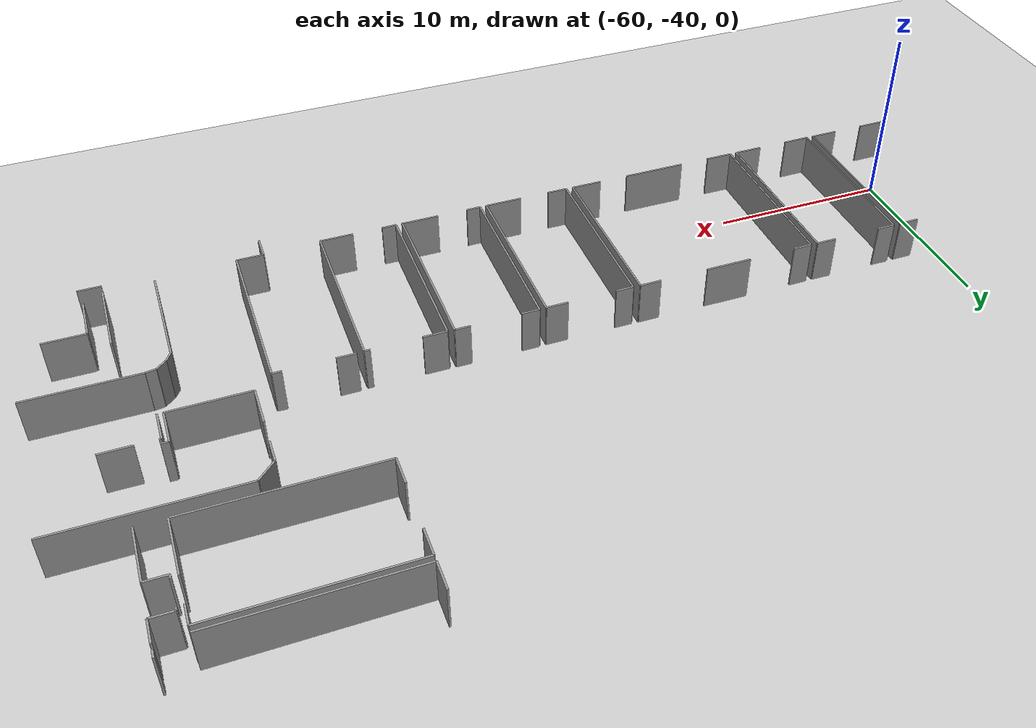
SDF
<sdf version="1.6">
 <world name="default">
  <model name="ground_plane">
   <static>1</static>
   <link name="link">
    <collision name="collision">
     <geometry><plane><normal>0 0 1</normal><size>100 100</size></plane></geometry>
     <surface><friction><ode><mu>100</mu><mu2>50</mu2></ode></friction></surface>
    </collision>
    <visual name="visual">
     <cast_shadows>0</cast_shadows>
     <geometry><plane><normal>0 0 1</normal><size>100 100</size></plane></geometry>
     <material>
      <script><uri>file://media/materials/scripts/gazebo.material</uri><name>Gazebo/Grey</name></script>
     </material>
    </visual>
   </link>
  </model>
  <model name="0510045922_A-40">
   <static>1</static>
   <link name="Wall_1048">
    <collision name="Wall_1048_Collision">
     <geometry><box><size>1.13134650823 0.1 2.5</size></box></geometry>
     <pose>0.565673254115 0 1.25 0 0 0</pose>
    </collision>
    <visual name="Wall_1048_Visual">
     <pose>0.565673254115 0 1.25 0 0 0</pose>
     <geometry><box><size>1.13134650823 0.1 2.5</size></box></geometry>
     <material>
      <script><uri>file://media/materials/scripts/gazebo.material</uri><name>Gazebo/Grey</name></script>
      <ambient>1 1 1 1</ambient>
     </material>
    </visual>
    <pose>75.5626104086 -134.859858931 0 0 0 0.0</pose>
   </link>
   <link name="Wall_1049">
    <collision name="Wall_1049_Collision">
     <geometry><box><size>9.60183008197 0.1 2.5</size></box></geometry>
     <pose>4.80091504099 0 1.25 0 0 0</pose>
    </collision>
    <visual name="Wall_1049_Visual">
     <pose>4.80091504099 0 1.25 0 0 0</pose>
     <geometry><box><size>9.60183008197 0.1 2.5</size></box></geometry>
     <material>
      <script><uri>file://media/materials/scripts/gazebo.material</uri><name>Gazebo/Grey</name></script>
      <ambient>1 1 1 1</ambient>
     </material>
    </visual>
    <pose>76.6939569168 -134.859858931 0 0 0 -1.57079632679</pose>
   </link>
   <link name="Wall_1050">
    <collision name="Wall_1050_Collision">
     <geometry><box><size>1.55353625214 0.1 2.5</size></box></geometry>
     <pose>0.776768126072 0 1.25 0 0 0</pose>
    </collision>
    <visual name="Wall_1050_Visual">
     <pose>0.776768126072 0 1.25 0 0 0</pose>
     <geometry><box><size>1.55353625214 0.1 2.5</size></box></geometry>
     <material>
      <script><uri>file://media/materials/scripts/gazebo.material</uri><name>Gazebo/Grey</name></script>
      <ambient>1 1 1 1</ambient>
     </material>
    </visual>
    <pose>76.6939569168 -144.461689013 0 0 0 3.14159265359</pose>
   </link>
   <link name="Wall_1051">
    <collision name="Wall_1051_Collision">
     <geometry><box><size>1.51237993411 0.1 2.5</size></box></geometry>
     <pose>0.756189967053 0 1.25 0 0 0</pose>
    </collision>
    <visual name="Wall_1051_Visual">
     <pose>0.756189967053 0 1.25 0 0 0</pose>
     <geometry><box><size>1.51237993411 0.1 2.5</size></box></geometry>
     <material>
      <script><uri>file://media/materials/scripts/gazebo.material</uri><name>Gazebo/Grey</name></script>
      <ambient>1 1 1 1</ambient>
     </material>
    </visual>
    <pose>73.3799834784 -144.461689013 0 0 0 -3.1363826167</pose>
   </link>
   <link name="Wall_1052">
    <collision name="Wall_1052_Collision">
     <geometry><box><size>9.63461905064 0.1 2.5</size></box></geometry>
     <pose>4.81730952532 0 1.25 0 0 0</pose>
    </collision>
    <visual name="Wall_1052_Visual">
     <pose>4.81730952532 0 1.25 0 0 0</pose>
     <geometry><box><size>9.63461905064 0.1 2.5</size></box></geometry>
     <material>
      <script><uri>file://media/materials/scripts/gazebo.material</uri><name>Gazebo/Grey</name></script>
      <ambient>1 1 1 1</ambient>
     </material>
    </visual>
    <pose>77.097845841 -144.480752367 0 0 0 1.57079632679</pose>
   </link>
   <link name="Wall_1053">
    <collision name="Wall_1053_Collision">
     <geometry><box><size>0.997648853022 0.1 2.5</size></box></geometry>
     <pose>0.498824426511 0 1.25 0 0 0</pose>
    </collision>
    <visual name="Wall_1053_Visual">
     <pose>0.498824426511 0 1.25 0 0 0</pose>
     <geometry><box><size>0.997648853022 0.1 2.5</size></box></geometry>
     <material>
      <script><uri>file://media/materials/scripts/gazebo.material</uri><name>Gazebo/Grey</name></script>
      <ambient>1 1 1 1</ambient>
     </material>
    </visual>
    <pose>77.097845841 -134.846133316 0 0 0 0.0</pose>
   </link>
   <link name="Wall_1054">
    <collision name="Wall_1054_Collision">
     <geometry><box><size>1.1277880155 0.1 2.5</size></box></geometry>
     <pose>0.563894007752 0 1.25 0 0 0</pose>
    </collision>
    <visual name="Wall_1054_Visual">
     <pose>0.563894007752 0 1.25 0 0 0</pose>
     <geometry><box><size>1.1277880155 0.1 2.5</size></box></geometry>
     <material>
      <script><uri>file://media/materials/scripts/gazebo.material</uri><name>Gazebo/Grey</name></script>
      <ambient>1 1 1 1</ambient>
     </material>
    </visual>
    <pose>80.8014742327 -134.846133316 0 0 0 0.0</pose>
   </link>
   <link name="Wall_1055">
    <collision name="Wall_1055_Collision">
     <geometry><box><size>9.6127597382 0.1 2.5</size></box></geometry>
     <pose>4.8063798691 0 1.25 0 0 0</pose>
    </collision>
    <visual name="Wall_1055_Visual">
     <pose>4.8063798691 0 1.25 0 0 0</pose>
     <geometry><box><size>9.6127597382 0.1 2.5</size></box></geometry>
     <material>
      <script><uri>file://media/materials/scripts/gazebo.material</uri><name>Gazebo/Grey</name></script>
      <ambient>1 1 1 1</ambient>
     </material>
    </visual>
    <pose>81.9292622482 -134.846133316 0 0 0 -1.57079632679</pose>
   </link>
   <link name="Wall_1056">
    <collision name="Wall_1056_Collision">
     <geometry><box><size>1.60818453327 0.1 2.5</size></box></geometry>
     <pose>0.804092266633 0 1.25 0 0 0</pose>
    </collision>
    <visual name="Wall_1056_Visual">
     <pose>0.804092266633 0 1.25 0 0 0</pose>
     <geometry><box><size>1.60818453327 0.1 2.5</size></box></geometry>
     <material>
      <script><uri>file://media/materials/scripts/gazebo.material</uri><name>Gazebo/Grey</name></script>
      <ambient>1 1 1 1</ambient>
     </material>
    </visual>
    <pose>81.9292622482 -144.458893055 0 0 0 3.14159265359</pose>
   </link>
   <link name="Wall_1057">
    <collision name="Wall_1057_Collision">
     <geometry><box><size>1.51709210292 0.1 2.5</size></box></geometry>
     <pose>0.758546051459 0 1.25 0 0 0</pose>
    </collision>
    <visual name="Wall_1057_Visual">
     <pose>0.758546051459 0 1.25 0 0 0</pose>
     <geometry><box><size>1.51709210292 0.1 2.5</size></box></geometry>
     <material>
      <script><uri>file://media/materials/scripts/gazebo.material</uri><name>Gazebo/Grey</name></script>
      <ambient>1 1 1 1</ambient>
     </material>
    </visual>
    <pose>78.6147804537 -144.458893055 0 0 0 -3.12718346324</pose>
   </link>
   <link name="Wall_1058">
    <collision name="Wall_1058_Collision">
     <geometry><box><size>9.6127597382 0.1 2.5</size></box></geometry>
     <pose>4.8063798691 0 1.25 0 0 0</pose>
    </collision>
    <visual name="Wall_1058_Visual">
     <pose>4.8063798691 0 1.25 0 0 0</pose>
     <geometry><box><size>9.6127597382 0.1 2.5</size></box></geometry>
     <material>
      <script><uri>file://media/materials/scripts/gazebo.material</uri><name>Gazebo/Grey</name></script>
      <ambient>1 1 1 1</ambient>
     </material>
    </visual>
    <pose>82.3206964479 -144.458893055 0 0 0 1.57079632679</pose>
   </link>
   <link name="Wall_1059">
    <collision name="Wall_1059_Collision">
     <geometry><box><size>1.04340090233 0.1 2.5</size></box></geometry>
     <pose>0.521700451166 0 1.25 0 0 0</pose>
    </collision>
    <visual name="Wall_1059_Visual">
     <pose>0.521700451166 0 1.25 0 0 0</pose>
     <geometry><box><size>1.04340090233 0.1 2.5</size></box></geometry>
     <material>
      <script><uri>file://media/materials/scripts/gazebo.material</uri><name>Gazebo/Grey</name></script>
      <ambient>1 1 1 1</ambient>
     </material>
    </visual>
    <pose>82.3206964479 -134.846133316 0 0 0 0.0</pose>
   </link>
   <link name="Wall_1060">
    <collision name="Wall_1060_Collision">
     <geometry><box><size>2.55550613205 0.1 2.5</size></box></geometry>
     <pose>1.27775306602 0 1.25 0 0 0</pose>
    </collision>
    <visual name="Wall_1060_Visual">
     <pose>1.27775306602 0 1.25 0 0 0</pose>
     <geometry><box><size>2.55550613205 0.1 2.5</size></box></geometry>
     <material>
      <script><uri>file://media/materials/scripts/gazebo.material</uri><name>Gazebo/Grey</name></script>
      <ambient>1 1 1 1</ambient>
     </material>
    </visual>
    <pose>86.0248331957 -134.846133316 0 0 0 0.0</pose>
   </link>
   <link name="Wall_1061">
    <collision name="Wall_1061_Collision">
     <geometry><box><size>1.18472389909 0.1 2.5</size></box></geometry>
     <pose>0.592361949546 0 1.25 0 0 0</pose>
    </collision>
    <visual name="Wall_1061_Visual">
     <pose>0.592361949546 0 1.25 0 0 0</pose>
     <geometry><box><size>1.18472389909 0.1 2.5</size></box></geometry>
     <material>
      <script><uri>file://media/materials/scripts/gazebo.material</uri><name>Gazebo/Grey</name></script>
      <ambient>1 1 1 1</ambient>
     </material>
    </visual>
    <pose>91.2878439347 -134.846133316 0 0 0 0.0</pose>
   </link>
   <link name="Wall_1062">
    <collision name="Wall_1062_Collision">
     <geometry><box><size>9.60691364301 0.1 2.5</size></box></geometry>
     <pose>4.8034568215 0 1.25 0 0 0</pose>
    </collision>
    <visual name="Wall_1062_Visual">
     <pose>4.8034568215 0 1.25 0 0 0</pose>
     <geometry><box><size>9.60691364301 0.1 2.5</size></box></geometry>
     <material>
      <script><uri>file://media/materials/scripts/gazebo.material</uri><name>Gazebo/Grey</name></script>
      <ambient>1 1 1 1</ambient>
     </material>
    </visual>
    <pose>92.4725678338 -134.846133316 0 0 0 -1.57079632679</pose>
   </link>
   <link name="Wall_1063">
    <collision name="Wall_1063_Collision">
     <geometry><box><size>1.70985575396 0.1 2.5</size></box></geometry>
     <pose>0.854927876978 0 1.25 0 0 0</pose>
    </collision>
    <visual name="Wall_1063_Visual">
     <pose>0.854927876978 0 1.25 0 0 0</pose>
     <geometry><box><size>1.70985575396 0.1 2.5</size></box></geometry>
     <material>
      <script><uri>file://media/materials/scripts/gazebo.material</uri><name>Gazebo/Grey</name></script>
      <ambient>1 1 1 1</ambient>
     </material>
    </visual>
    <pose>92.4725678338 -144.453046959 0 0 0 3.14159265359</pose>
   </link>
   <link name="Wall_1064">
    <collision name="Wall_1064_Collision">
     <geometry><box><size>3.52722882379 0.1 2.5</size></box></geometry>
     <pose>1.7636144119 0 1.25 0 0 0</pose>
    </collision>
    <visual name="Wall_1064_Visual">
     <pose>1.7636144119 0 1.25 0 0 0</pose>
     <geometry><box><size>3.52722882379 0.1 2.5</size></box></geometry>
     <material>
      <script><uri>file://media/materials/scripts/gazebo.material</uri><name>Gazebo/Grey</name></script>
      <ambient>1 1 1 1</ambient>
     </material>
    </visual>
    <pose>89.0851369384 -144.453046959 0 0 0 3.14159265359</pose>
   </link>
   <link name="Wall_1065">
    <collision name="Wall_1065_Collision">
     <geometry><box><size>1.52050434411 0.1 2.5</size></box></geometry>
     <pose>0.760252172055 0 1.25 0 0 0</pose>
    </collision>
    <visual name="Wall_1065_Visual">
     <pose>0.760252172055 0 1.25 0 0 0</pose>
     <geometry><box><size>1.52050434411 0.1 2.5</size></box></geometry>
     <material>
      <script><uri>file://media/materials/scripts/gazebo.material</uri><name>Gazebo/Grey</name></script>
      <ambient>1 1 1 1</ambient>
     </material>
    </visual>
    <pose>83.8411895533 -144.453046959 0 0 0 -3.1377478046</pose>
   </link>
   <link name="Wall_1066">
    <collision name="Wall_1066_Collision">
     <geometry><box><size>9.59395056237 0.1 2.5</size></box></geometry>
     <pose>4.79697528118 0 1.25 0 0 0</pose>
    </collision>
    <visual name="Wall_1066_Visual">
     <pose>4.79697528118 0 1.25 0 0 0</pose>
     <geometry><box><size>9.59395056237 0.1 2.5</size></box></geometry>
     <material>
      <script><uri>file://media/materials/scripts/gazebo.material</uri><name>Gazebo/Grey</name></script>
      <ambient>1 1 1 1</ambient>
     </material>
    </visual>
    <pose>92.8706106628 -144.462451547 0 0 0 1.57079632679</pose>
   </link>
   <link name="Wall_1067">
    <collision name="Wall_1067_Collision">
     <geometry><box><size>0.973756116159 0.1 2.5</size></box></geometry>
     <pose>0.48687805808 0 1.25 0 0 0</pose>
    </collision>
    <visual name="Wall_1067_Visual">
     <pose>0.48687805808 0 1.25 0 0 0</pose>
     <geometry><box><size>0.973756116159 0.1 2.5</size></box></geometry>
     <material>
      <script><uri>file://media/materials/scripts/gazebo.material</uri><name>Gazebo/Grey</name></script>
      <ambient>1 1 1 1</ambient>
     </material>
    </visual>
    <pose>92.8706106628 -134.868500985 0 0 0 0.0</pose>
   </link>
   <link name="Wall_1068">
    <collision name="Wall_1068_Collision">
     <geometry><box><size>1.21141259452 0.1 2.5</size></box></geometry>
     <pose>0.605706297261 0 1.25 0 0 0</pose>
    </collision>
    <visual name="Wall_1068_Visual">
     <pose>0.605706297261 0 1.25 0 0 0</pose>
     <geometry><box><size>1.21141259452 0.1 2.5</size></box></geometry>
     <material>
      <script><uri>file://media/materials/scripts/gazebo.material</uri><name>Gazebo/Grey</name></script>
      <ambient>1 1 1 1</ambient>
     </material>
    </visual>
    <pose>96.5188282392 -134.868500985 0 0 0 0.0</pose>
   </link>
   <link name="Wall_1069">
    <collision name="Wall_1069_Collision">
     <geometry><box><size>9.60132172587 0.1 2.5</size></box></geometry>
     <pose>4.80066086293 0 1.25 0 0 0</pose>
    </collision>
    <visual name="Wall_1069_Visual">
     <pose>4.80066086293 0 1.25 0 0 0</pose>
     <geometry><box><size>9.60132172587 0.1 2.5</size></box></geometry>
     <material>
      <script><uri>file://media/materials/scripts/gazebo.material</uri><name>Gazebo/Grey</name></script>
      <ambient>1 1 1 1</ambient>
     </material>
    </visual>
    <pose>97.7302408337 -134.868500985 0 0 0 -1.57079632679</pose>
   </link>
   <link name="Wall_1070">
    <collision name="Wall_1070_Collision">
     <geometry><box><size>2.05706297261 0.1 2.5</size></box></geometry>
     <pose>1.02853148631 0 1.25 0 0 0</pose>
    </collision>
    <visual name="Wall_1070_Visual">
     <pose>1.02853148631 0 1.25 0 0 0</pose>
     <geometry><box><size>2.05706297261 0.1 2.5</size></box></geometry>
     <material>
      <script><uri>file://media/materials/scripts/gazebo.material</uri><name>Gazebo/Grey</name></script>
      <ambient>1 1 1 1</ambient>
     </material>
    </visual>
    <pose>97.7302408337 -144.469822711 0 0 0 3.14159265359</pose>
   </link>
   <link name="Wall_1071">
    <collision name="Wall_1071_Collision">
     <geometry><box><size>1.10773247459 0.1 2.5</size></box></geometry>
     <pose>0.553866237294 0 1.25 0 0 0</pose>
    </collision>
    <visual name="Wall_1071_Visual">
     <pose>0.553866237294 0 1.25 0 0 0</pose>
     <geometry><box><size>1.10773247459 0.1 2.5</size></box></geometry>
     <material>
      <script><uri>file://media/materials/scripts/gazebo.material</uri><name>Gazebo/Grey</name></script>
      <ambient>1 1 1 1</ambient>
     </material>
    </visual>
    <pose>93.9783186122 -144.469822711 0 0 0 3.13493832317</pose>
   </link>
   <link name="Wall_1072">
    <collision name="Wall_1072_Collision">
     <geometry><box><size>9.63283980428 0.1 2.5</size></box></geometry>
     <pose>4.81641990214 0 1.25 0 0 0</pose>
    </collision>
    <visual name="Wall_1072_Visual">
     <pose>4.81641990214 0 1.25 0 0 0</pose>
     <geometry><box><size>9.63283980428 0.1 2.5</size></box></geometry>
     <material>
      <script><uri>file://media/materials/scripts/gazebo.material</uri><name>Gazebo/Grey</name></script>
      <ambient>1 1 1 1</ambient>
     </material>
    </visual>
    <pose>98.0962572282 -144.480498189 0 0 0 1.57079632679</pose>
   </link>
   <link name="Wall_1073">
    <collision name="Wall_1073_Collision">
     <geometry><box><size>0.975535362521 0.1 2.5</size></box></geometry>
     <pose>0.487767681261 0 1.25 0 0 0</pose>
    </collision>
    <visual name="Wall_1073_Visual">
     <pose>0.487767681261 0 1.25 0 0 0</pose>
     <geometry><box><size>0.975535362521 0.1 2.5</size></box></geometry>
     <material>
      <script><uri>file://media/materials/scripts/gazebo.material</uri><name>Gazebo/Grey</name></script>
      <ambient>1 1 1 1</ambient>
     </material>
    </visual>
    <pose>98.0962572282 -134.847658385 0 0 0 0.0</pose>
   </link>
   <link name="Wall_1074">
    <collision name="Wall_1074_Collision">
     <geometry><box><size>0.847429624452 0.1 2.5</size></box></geometry>
     <pose>0.423714812226 0 1.25 0 0 0</pose>
    </collision>
    <visual name="Wall_1074_Visual">
     <pose>0.423714812226 0 1.25 0 0 0</pose>
     <geometry><box><size>0.847429624452 0.1 2.5</size></box></geometry>
     <material>
      <script><uri>file://media/materials/scripts/gazebo.material</uri><name>Gazebo/Grey</name></script>
      <ambient>1 1 1 1</ambient>
     </material>
    </visual>
    <pose>101.805477537 -134.847658385 0 0 0 0.0</pose>
   </link>
   <link name="Wall_1075">
    <collision name="Wall_1075_Collision">
     <geometry><box><size>9.6211476139 0.1 2.5</size></box></geometry>
     <pose>4.81057380695 0 1.25 0 0 0</pose>
    </collision>
    <visual name="Wall_1075_Visual">
     <pose>4.81057380695 0 1.25 0 0 0</pose>
     <geometry><box><size>9.6211476139 0.1 2.5</size></box></geometry>
     <material>
      <script><uri>file://media/materials/scripts/gazebo.material</uri><name>Gazebo/Grey</name></script>
      <ambient>1 1 1 1</ambient>
     </material>
    </visual>
    <pose>102.652907161 -134.847658385 0 0 0 -1.57079632679</pose>
   </link>
   <link name="Wall_1076">
    <collision name="Wall_1076_Collision">
     <geometry><box><size>2.05426701404 0.1 2.5</size></box></geometry>
     <pose>1.02713350702 0 1.25 0 0 0</pose>
    </collision>
    <visual name="Wall_1076_Visual">
     <pose>1.02713350702 0 1.25 0 0 0</pose>
     <geometry><box><size>2.05426701404 0.1 2.5</size></box></geometry>
     <material>
      <script><uri>file://media/materials/scripts/gazebo.material</uri><name>Gazebo/Grey</name></script>
      <ambient>1 1 1 1</ambient>
     </material>
    </visual>
    <pose>102.652907161 -144.468805999 0 0 0 3.14159265359</pose>
   </link>
   <link name="Wall_1077">
    <collision name="Wall_1077_Collision">
     <geometry><box><size>0.802525287031 0.1 2.5</size></box></geometry>
     <pose>0.401262643515 0 1.25 0 0 0</pose>
    </collision>
    <visual name="Wall_1077_Visual">
     <pose>0.401262643515 0 1.25 0 0 0</pose>
     <geometry><box><size>0.802525287031 0.1 2.5</size></box></geometry>
     <material>
      <script><uri>file://media/materials/scripts/gazebo.material</uri><name>Gazebo/Grey</name></script>
      <ambient>1 1 1 1</ambient>
     </material>
    </visual>
    <pose>98.8986973375 -144.468805999 0 0 0 -3.12702288957</pose>
   </link>
   <link name="Wall_1078">
    <collision name="Wall_1078_Collision">
     <geometry><box><size>9.60818453327 0.1 2.5</size></box></geometry>
     <pose>4.80409226663 0 1.25 0 0 0</pose>
    </collision>
    <visual name="Wall_1078_Visual">
     <pose>4.80409226663 0 1.25 0 0 0</pose>
     <geometry><box><size>9.60818453327 0.1 2.5</size></box></geometry>
     <material>
      <script><uri>file://media/materials/scripts/gazebo.material</uri><name>Gazebo/Grey</name></script>
      <ambient>1 1 1 1</ambient>
     </material>
    </visual>
    <pose>103.017906844 -144.475922984 0 0 0 1.57079632679</pose>
   </link>
   <link name="Wall_1079">
    <collision name="Wall_1079_Collision">
     <geometry><box><size>1.28537840757 0.1 2.5</size></box></geometry>
     <pose>0.642689203787 0 1.25 0 0 0</pose>
    </collision>
    <visual name="Wall_1079_Visual">
     <pose>0.642689203787 0 1.25 0 0 0</pose>
     <geometry><box><size>1.28537840757 0.1 2.5</size></box></geometry>
     <material>
      <script><uri>file://media/materials/scripts/gazebo.material</uri><name>Gazebo/Grey</name></script>
      <ambient>1 1 1 1</ambient>
     </material>
    </visual>
    <pose>103.017906844 -134.867738451 0 0 0 0.0</pose>
   </link>
   <link name="Wall_1080">
    <collision name="Wall_1080_Collision">
     <geometry><box><size>0.307555442588 0.1 2.5</size></box></geometry>
     <pose>0.153777721294 0 1.25 0 0 0</pose>
    </collision>
    <visual name="Wall_1080_Visual">
     <pose>0.153777721294 0 1.25 0 0 0</pose>
     <geometry><box><size>0.307555442588 0.1 2.5</size></box></geometry>
     <material>
      <script><uri>file://media/materials/scripts/gazebo.material</uri><name>Gazebo/Grey</name></script>
      <ambient>1 1 1 1</ambient>
     </material>
    </visual>
    <pose>106.998589312 -134.867738451 0 0 0 0.0</pose>
   </link>
   <link name="Wall_1081">
    <collision name="Wall_1081_Collision">
     <geometry><box><size>9.60208426002 0.1 2.5</size></box></geometry>
     <pose>4.80104213001 0 1.25 0 0 0</pose>
    </collision>
    <visual name="Wall_1081_Visual">
     <pose>4.80104213001 0 1.25 0 0 0</pose>
     <geometry><box><size>9.60208426002 0.1 2.5</size></box></geometry>
     <material>
      <script><uri>file://media/materials/scripts/gazebo.material</uri><name>Gazebo/Grey</name></script>
      <ambient>1 1 1 1</ambient>
     </material>
    </visual>
    <pose>107.306144754 -134.867738451 0 0 0 -1.57079632679</pose>
   </link>
   <link name="Wall_1082">
    <collision name="Wall_1082_Collision">
     <geometry><box><size>1.83160704073 0.1 2.5</size></box></geometry>
     <pose>0.915803520366 0 1.25 0 0 0</pose>
    </collision>
    <visual name="Wall_1082_Visual">
     <pose>0.915803520366 0 1.25 0 0 0</pose>
     <geometry><box><size>1.83160704073 0.1 2.5</size></box></geometry>
     <material>
      <script><uri>file://media/materials/scripts/gazebo.material</uri><name>Gazebo/Grey</name></script>
      <ambient>1 1 1 1</ambient>
     </material>
    </visual>
    <pose>107.306144754 -144.469822711 0 0 0 3.14159265359</pose>
   </link>
   <link name="Wall_1083">
    <collision name="Wall_1083_Collision">
     <geometry><box><size>0.808563394873 0.1 2.5</size></box></geometry>
     <pose>0.404281697436 0 1.25 0 0 0</pose>
    </collision>
    <visual name="Wall_1083_Visual">
     <pose>0.404281697436 0 1.25 0 0 0</pose>
     <geometry><box><size>0.808563394873 0.1 2.5</size></box></geometry>
     <material>
      <script><uri>file://media/materials/scripts/gazebo.material</uri><name>Gazebo/Grey</name></script>
      <ambient>1 1 1 1</ambient>
     </material>
    </visual>
    <pose>103.826447226 -144.469822711 0 0 0 -3.13404799951</pose>
   </link>
   <link name="Wall_1085">
    <collision name="Wall_1085_Collision">
     <geometry><box><size>1.04594268285 0.1 2.5</size></box></geometry>
     <pose>0.522971341425 0 1.25 0 0 0</pose>
    </collision>
    <visual name="Wall_1085_Visual">
     <pose>0.522971341425 0 1.25 0 0 0</pose>
     <geometry><box><size>1.04594268285 0.1 2.5</size></box></geometry>
     <material>
      <script><uri>file://media/materials/scripts/gazebo.material</uri><name>Gazebo/Grey</name></script>
      <ambient>1 1 1 1</ambient>
     </material>
    </visual>
    <pose>107.676227998 -134.833424414 0 0 0 0.0</pose>
   </link>
   <link name="Wall_1086">
    <collision name="Wall_1086_Collision">
     <geometry><box><size>0.50530596683 0.1 2.5</size></box></geometry>
     <pose>0.252652983415 0 1.25 0 0 0</pose>
    </collision>
    <visual name="Wall_1086_Visual">
     <pose>0.252652983415 0 1.25 0 0 0</pose>
     <geometry><box><size>0.50530596683 0.1 2.5</size></box></geometry>
     <material>
      <script><uri>file://media/materials/scripts/gazebo.material</uri><name>Gazebo/Grey</name></script>
      <ambient>1 1 1 1</ambient>
     </material>
    </visual>
    <pose>111.392565292 -134.833424414 0 0 0 0.0</pose>
   </link>
   <link name="Wall_1087">
    <collision name="Wall_1087_Collision">
     <geometry><box><size>9.50346317595 0.1 2.5</size></box></geometry>
     <pose>4.75173158798 0 1.25 0 0 0</pose>
    </collision>
    <visual name="Wall_1087_Visual">
     <pose>4.75173158798 0 1.25 0 0 0</pose>
     <geometry><box><size>9.50346317595 0.1 2.5</size></box></geometry>
     <material>
      <script><uri>file://media/materials/scripts/gazebo.material</uri><name>Gazebo/Grey</name></script>
      <ambient>1 1 1 1</ambient>
     </material>
    </visual>
    <pose>111.897871259 -134.833424414 0 0 0 -1.57079632679</pose>
   </link>
   <link name="Wall_1088">
    <collision name="Wall_1088_Collision">
     <geometry><box><size>1.45415263392 0.1 2.5</size></box></geometry>
     <pose>0.72707631696 0 1.25 0 0 0</pose>
    </collision>
    <visual name="Wall_1088_Visual">
     <pose>0.72707631696 0 1.25 0 0 0</pose>
     <geometry><box><size>1.45415263392 0.1 2.5</size></box></geometry>
     <material>
      <script><uri>file://media/materials/scripts/gazebo.material</uri><name>Gazebo/Grey</name></script>
      <ambient>1 1 1 1</ambient>
     </material>
    </visual>
    <pose>111.897871259 -144.33688759 0 0 0 3.14159265359</pose>
   </link>
   <link name="Wall_1089">
    <collision name="Wall_1089_Collision">
     <geometry><box><size>1.35451483764 0.1 2.5</size></box></geometry>
     <pose>0.677257418822 0 1.25 0 0 0</pose>
    </collision>
    <visual name="Wall_1089_Visual">
     <pose>0.677257418822 0 1.25 0 0 0</pose>
     <geometry><box><size>1.35451483764 0.1 2.5</size></box></geometry>
     <material>
      <script><uri>file://media/materials/scripts/gazebo.material</uri><name>Gazebo/Grey</name></script>
      <ambient>1 1 1 1</ambient>
     </material>
    </visual>
    <pose>110.443718625 -144.33688759 0 0 0 -1.57079632679</pose>
   </link>
   <link name="Wall_1204">
    <collision name="Wall_1204_Collision">
     <geometry><box><size>2.50034949482 0.1 2.5</size></box></geometry>
     <pose>1.25017474741 0 1.25 0 0 0</pose>
    </collision>
    <visual name="Wall_1204_Visual">
     <pose>1.25017474741 0 1.25 0 0 0</pose>
     <geometry><box><size>2.50034949482 0.1 2.5</size></box></geometry>
     <material>
      <script><uri>file://media/materials/scripts/gazebo.material</uri><name>Gazebo/Grey</name></script>
      <ambient>1 1 1 1</ambient>
     </material>
    </visual>
    <pose>119.949215225 -143.438622355 0 0 0 1.57079632679</pose>
   </link>
   <link name="Wall_1205">
    <collision name="Wall_1205_Collision">
     <geometry><box><size>2.2761644532 0.1 2.5</size></box></geometry>
     <pose>1.1380822266 0 1.25 0 0 0</pose>
    </collision>
    <visual name="Wall_1205_Visual">
     <pose>1.1380822266 0 1.25 0 0 0</pose>
     <geometry><box><size>2.2761644532 0.1 2.5</size></box></geometry>
     <material>
      <script><uri>file://media/materials/scripts/gazebo.material</uri><name>Gazebo/Grey</name></script>
      <ambient>1 1 1 1</ambient>
     </material>
    </visual>
    <pose>119.949215225 -140.93827286 0 0 0 0.0</pose>
   </link>
   <link name="Wall_1356">
    <collision name="Wall_1356_Collision">
     <geometry><box><size>1.55582385461 0.1 2.5</size></box></geometry>
     <pose>0.777911927305 0 1.25 0 0 0</pose>
    </collision>
    <visual name="Wall_1356_Visual">
     <pose>0.777911927305 0 1.25 0 0 0</pose>
     <geometry><box><size>1.55582385461 0.1 2.5</size></box></geometry>
     <material>
      <script><uri>file://media/materials/scripts/gazebo.material</uri><name>Gazebo/Grey</name></script>
      <ambient>1 1 1 1</ambient>
     </material>
    </visual>
    <pose>107.742060113 -121.178216941 0 0 0 1.57079632679</pose>
   </link>
   <link name="Wall_1361">
    <collision name="Wall_1361_Collision">
     <geometry><box><size>10.0832440328 0.1 2.5</size></box></geometry>
     <pose>5.04162201638 0 1.25 0 0 0</pose>
    </collision>
    <visual name="Wall_1361_Visual">
     <pose>5.04162201638 0 1.25 0 0 0</pose>
     <geometry><box><size>10.0832440328 0.1 2.5</size></box></geometry>
     <material>
      <script><uri>file://media/materials/scripts/gazebo.material</uri><name>Gazebo/Grey</name></script>
      <ambient>1 1 1 1</ambient>
     </material>
    </visual>
    <pose>117.825303425 -121.17440427 0 0 0 -3.14121453412</pose>
   </link>
   <link name="Wall_1399">
    <collision name="Wall_1399_Collision">
     <geometry><box><size>0.423206456123 0.1 2.5</size></box></geometry>
     <pose>0.211603228061 0 1.25 0 0 0</pose>
    </collision>
    <visual name="Wall_1399_Visual">
     <pose>0.211603228061 0 1.25 0 0 0</pose>
     <geometry><box><size>0.423206456123 0.1 2.5</size></box></geometry>
     <material>
      <script><uri>file://media/materials/scripts/gazebo.material</uri><name>Gazebo/Grey</name></script>
      <ambient>1 1 1 1</ambient>
     </material>
    </visual>
    <pose>119.327749889 -120.878795196 0 0 0 1.57079632679</pose>
   </link>
   <link name="Wall_1404">
    <collision name="Wall_1404_Collision">
     <geometry><box><size>1.5832750842 0.1 2.5</size></box></geometry>
     <pose>0.791637542098 0 1.25 0 0 0</pose>
    </collision>
    <visual name="Wall_1404_Visual">
     <pose>0.791637542098 0 1.25 0 0 0</pose>
     <geometry><box><size>1.5832750842 0.1 2.5</size></box></geometry>
     <material>
      <script><uri>file://media/materials/scripts/gazebo.material</uri><name>Gazebo/Grey</name></script>
      <ambient>1 1 1 1</ambient>
     </material>
    </visual>
    <pose>107.754769016 -127.373044418 0 0 0 1.57079632679</pose>
   </link>
   <link name="Wall_1405">
    <collision name="Wall_1405_Collision">
     <geometry><box><size>1.53930228125 0.1 2.5</size></box></geometry>
     <pose>0.769651140624 0 1.25 0 0 0</pose>
    </collision>
    <visual name="Wall_1405_Visual">
     <pose>0.769651140624 0 1.25 0 0 0</pose>
     <geometry><box><size>1.53930228125 0.1 2.5</size></box></geometry>
     <material>
      <script><uri>file://media/materials/scripts/gazebo.material</uri><name>Gazebo/Grey</name></script>
      <ambient>1 1 1 1</ambient>
     </material>
    </visual>
    <pose>107.754769016 -123.052017538 0 0 0 1.57079632679</pose>
   </link>
   <link name="Wall_1406">
    <collision name="Wall_1406_Collision">
     <geometry><box><size>10.0697718752 0.1 2.5</size></box></geometry>
     <pose>5.0348859376 0 1.25 0 0 0</pose>
    </collision>
    <visual name="Wall_1406_Visual">
     <pose>5.0348859376 0 1.25 0 0 0</pose>
     <geometry><box><size>10.0697718752 0.1 2.5</size></box></geometry>
     <material>
      <script><uri>file://media/materials/scripts/gazebo.material</uri><name>Gazebo/Grey</name></script>
      <ambient>1 1 1 1</ambient>
     </material>
    </visual>
    <pose>107.754769016 -121.512715257 0 0 0 0.0</pose>
   </link>
   <link name="Wall_1407">
    <collision name="Wall_1407_Collision">
     <geometry><box><size>1.10491199085 0.1 2.5</size></box></geometry>
     <pose>0.552455995425 0 1.25 0 0 0</pose>
    </collision>
    <visual name="Wall_1407_Visual">
     <pose>0.552455995425 0 1.25 0 0 0</pose>
     <geometry><box><size>1.10491199085 0.1 2.5</size></box></geometry>
     <material>
      <script><uri>file://media/materials/scripts/gazebo.material</uri><name>Gazebo/Grey</name></script>
      <ambient>1 1 1 1</ambient>
     </material>
    </visual>
    <pose>117.824540891 -121.512715257 0 0 0 -1.57079632679</pose>
   </link>
   <link name="Wall_1408">
    <collision name="Wall_1408_Collision">
     <geometry><box><size>3.25322488403 0.1 2.5</size></box></geometry>
     <pose>1.62661244202 0 1.25 0 0 0</pose>
    </collision>
    <visual name="Wall_1408_Visual">
     <pose>1.62661244202 0 1.25 0 0 0</pose>
     <geometry><box><size>3.25322488403 0.1 2.5</size></box></geometry>
     <material>
      <script><uri>file://media/materials/scripts/gazebo.material</uri><name>Gazebo/Grey</name></script>
      <ambient>1 1 1 1</ambient>
     </material>
    </visual>
    <pose>117.824540891 -124.133036792 0 0 0 -1.57079632679</pose>
   </link>
   <link name="Wall_1409">
    <collision name="Wall_1409_Collision">
     <geometry><box><size>10.0697805495 0.1 2.5</size></box></geometry>
     <pose>5.03489027473 0 1.25 0 0 0</pose>
    </collision>
    <visual name="Wall_1409_Visual">
     <pose>5.03489027473 0 1.25 0 0 0</pose>
     <geometry><box><size>10.0697805495 0.1 2.5</size></box></geometry>
     <material>
      <script><uri>file://media/materials/scripts/gazebo.material</uri><name>Gazebo/Grey</name></script>
      <ambient>1 1 1 1</ambient>
     </material>
    </visual>
    <pose>117.824540891 -127.386261676 0 0 0 3.14028008651</pose>
   </link>
   <link name="Wall_1415">
    <collision name="Wall_1415_Collision">
     <geometry><box><size>3.08317976743 0.1 2.5</size></box></geometry>
     <pose>1.54158988371 0 1.25 0 0 0</pose>
    </collision>
    <visual name="Wall_1415_Visual">
     <pose>1.54158988371 0 1.25 0 0 0</pose>
     <geometry><box><size>3.08317976743 0.1 2.5</size></box></geometry>
     <material>
      <script><uri>file://media/materials/scripts/gazebo.material</uri><name>Gazebo/Grey</name></script>
      <ambient>1 1 1 1</ambient>
     </material>
    </visual>
    <pose>119.322666328 -127.392107771 0 0 0 1.57079632679</pose>
   </link>
   <link name="Wall_1416">
    <collision name="Wall_1416_Collision">
     <geometry><box><size>1.14507212302 0.1 2.5</size></box></geometry>
     <pose>0.572536061511 0 1.25 0 0 0</pose>
    </collision>
    <visual name="Wall_1416_Visual">
     <pose>0.572536061511 0 1.25 0 0 0</pose>
     <geometry><box><size>1.14507212302 0.1 2.5</size></box></geometry>
     <material>
      <script><uri>file://media/materials/scripts/gazebo.material</uri><name>Gazebo/Grey</name></script>
      <ambient>1 1 1 1</ambient>
     </material>
    </visual>
    <pose>119.322666328 -124.308928004 0 0 0 3.14159265359</pose>
   </link>
   <link name="Wall_1417">
    <collision name="Wall_1417_Collision">
     <geometry><box><size>0.20918853657 0.1 2.5</size></box></geometry>
     <pose>0.104594268285 0 1.25 0 0 0</pose>
    </collision>
    <visual name="Wall_1417_Visual">
     <pose>0.104594268285 0 1.25 0 0 0</pose>
     <geometry><box><size>0.20918853657 0.1 2.5</size></box></geometry>
     <material>
      <script><uri>file://media/materials/scripts/gazebo.material</uri><name>Gazebo/Grey</name></script>
      <ambient>1 1 1 1</ambient>
     </material>
    </visual>
    <pose>118.177594205 -124.308928004 0 0 0 1.57079632679</pose>
   </link>
   <link name="Wall_1418">
    <collision name="Wall_1418_Collision">
     <geometry><box><size>0.19012518269 0.1 2.5</size></box></geometry>
     <pose>0.0950625913452 0 1.25 0 0 0</pose>
    </collision>
    <visual name="Wall_1418_Visual">
     <pose>0.0950625913452 0 1.25 0 0 0</pose>
     <geometry><box><size>0.19012518269 0.1 2.5</size></box></geometry>
     <material>
      <script><uri>file://media/materials/scripts/gazebo.material</uri><name>Gazebo/Grey</name></script>
      <ambient>1 1 1 1</ambient>
     </material>
    </visual>
    <pose>118.177594205 -122.594242867 0 0 0 1.57079632679</pose>
   </link>
   <link name="Wall_1419">
    <collision name="Wall_1419_Collision">
     <geometry><box><size>1.15879773782 0.1 2.5</size></box></geometry>
     <pose>0.579398868908 0 1.25 0 0 0</pose>
    </collision>
    <visual name="Wall_1419_Visual">
     <pose>0.579398868908 0 1.25 0 0 0</pose>
     <geometry><box><size>1.15879773782 0.1 2.5</size></box></geometry>
     <material>
      <script><uri>file://media/materials/scripts/gazebo.material</uri><name>Gazebo/Grey</name></script>
      <ambient>1 1 1 1</ambient>
     </material>
    </visual>
    <pose>118.177594205 -122.404117684 0 0 0 0.0</pose>
   </link>
   <link name="Wall_1420">
    <collision name="Wall_1420_Collision">
     <geometry><box><size>1.24267649488 0.1 2.5</size></box></geometry>
     <pose>0.621338247442 0 1.25 0 0 0</pose>
    </collision>
    <visual name="Wall_1420_Visual">
     <pose>0.621338247442 0 1.25 0 0 0</pose>
     <geometry><box><size>1.24267649488 0.1 2.5</size></box></geometry>
     <material>
      <script><uri>file://media/materials/scripts/gazebo.material</uri><name>Gazebo/Grey</name></script>
      <ambient>1 1 1 1</ambient>
     </material>
    </visual>
    <pose>119.336391943 -122.404117684 0 0 0 1.57079632679</pose>
   </link>
   <link name="Wall_1426">
    <collision name="Wall_1426_Collision">
     <geometry><box><size>1.69663849527 0.1 2.5</size></box></geometry>
     <pose>0.848319247633 0 1.25 0 0 0</pose>
    </collision>
    <visual name="Wall_1426_Visual">
     <pose>0.848319247633 0 1.25 0 0 0</pose>
     <geometry><box><size>1.69663849527 0.1 2.5</size></box></geometry>
     <material>
      <script><uri>file://media/materials/scripts/gazebo.material</uri><name>Gazebo/Grey</name></script>
      <ambient>1 1 1 1</ambient>
     </material>
    </visual>
    <pose>117.450390799 -133.958289382 0 0 0 1.57079632679</pose>
   </link>
   <link name="Wall_1427">
    <collision name="Wall_1427_Collision">
     <geometry><box><size>0.109804918345 0.1 2.5</size></box></geometry>
     <pose>0.0549024591727 0 1.25 0 0 0</pose>
    </collision>
    <visual name="Wall_1427_Visual">
     <pose>0.0549024591727 0 1.25 0 0 0</pose>
     <geometry><box><size>0.109804918345 0.1 2.5</size></box></geometry>
     <material>
      <script><uri>file://media/materials/scripts/gazebo.material</uri><name>Gazebo/Grey</name></script>
      <ambient>1 1 1 1</ambient>
     </material>
    </visual>
    <pose>117.450390799 -132.261650886 0 0 0 0.0</pose>
   </link>
   <link name="Wall_1428">
    <collision name="Wall_1428_Collision">
     <geometry><box><size>1.68825061956 0.1 2.5</size></box></geometry>
     <pose>0.844125309779 0 1.25 0 0 0</pose>
    </collision>
    <visual name="Wall_1428_Visual">
     <pose>0.844125309779 0 1.25 0 0 0</pose>
     <geometry><box><size>1.68825061956 0.1 2.5</size></box></geometry>
     <material>
      <script><uri>file://media/materials/scripts/gazebo.material</uri><name>Gazebo/Grey</name></script>
      <ambient>1 1 1 1</ambient>
     </material>
    </visual>
    <pose>118.679595857 -132.261650886 0 0 0 0.0</pose>
   </link>
   <link name="Wall_1436">
    <collision name="Wall_1436_Collision">
     <geometry><box><size>2.22126199403 0.1 2.5</size></box></geometry>
     <pose>1.11063099701 0 1.25 0 0 0</pose>
    </collision>
    <visual name="Wall_1436_Visual">
     <pose>1.11063099701 0 1.25 0 0 0</pose>
     <geometry><box><size>2.22126199403 0.1 2.5</size></box></geometry>
     <material>
      <script><uri>file://media/materials/scripts/gazebo.material</uri><name>Gazebo/Grey</name></script>
      <ambient>1 1 1 1</ambient>
     </material>
    </visual>
    <pose>112.871373197 -133.95066404 0 0 0 1.57079632679</pose>
   </link>
   <link name="Wall_1437">
    <collision name="Wall_1437_Collision">
     <geometry><box><size>1.30774607613 0.1 2.5</size></box></geometry>
     <pose>0.653873038063 0 1.25 0 0 0</pose>
    </collision>
    <visual name="Wall_1437_Visual">
     <pose>0.653873038063 0 1.25 0 0 0</pose>
     <geometry><box><size>1.30774607613 0.1 2.5</size></box></geometry>
     <material>
      <script><uri>file://media/materials/scripts/gazebo.material</uri><name>Gazebo/Grey</name></script>
      <ambient>1 1 1 1</ambient>
     </material>
    </visual>
    <pose>112.871373197 -130.40996378 0 0 0 1.57079632679</pose>
   </link>
   <link name="Wall_1438">
    <collision name="Wall_1438_Collision">
     <geometry><box><size>1.31909154775 0.1 2.5</size></box></geometry>
     <pose>0.659545773873 0 1.25 0 0 0</pose>
    </collision>
    <visual name="Wall_1438_Visual">
     <pose>0.659545773873 0 1.25 0 0 0</pose>
     <geometry><box><size>1.31909154775 0.1 2.5</size></box></geometry>
     <material>
      <script><uri>file://media/materials/scripts/gazebo.material</uri><name>Gazebo/Grey</name></script>
      <ambient>1 1 1 1</ambient>
     </material>
    </visual>
    <pose>112.871373197 -129.102217704 0 0 0 0.777086595701</pose>
   </link>
   <link name="Wall_1439">
    <collision name="Wall_1439_Collision">
     <geometry><box><size>9.55912816928 0.1 2.5</size></box></geometry>
     <pose>4.77956408464 0 1.25 0 0 0</pose>
    </collision>
    <visual name="Wall_1439_Visual">
     <pose>4.77956408464 0 1.25 0 0 0</pose>
     <geometry><box><size>9.55912816928 0.1 2.5</size></box></geometry>
     <material>
      <script><uri>file://media/materials/scripts/gazebo.material</uri><name>Gazebo/Grey</name></script>
      <ambient>1 1 1 1</ambient>
     </material>
    </visual>
    <pose>113.811831988 -128.177263773 0 0 0 0.0</pose>
   </link>
   <link name="Wall_1444">
    <collision name="Wall_1444_Collision">
     <geometry><box><size>0.398805363157 0.1 2.5</size></box></geometry>
     <pose>0.199402681578 0 1.25 0 0 0</pose>
    </collision>
    <visual name="Wall_1444_Visual">
     <pose>0.199402681578 0 1.25 0 0 0</pose>
     <geometry><box><size>0.398805363157 0.1 2.5</size></box></geometry>
     <material>
      <script><uri>file://media/materials/scripts/gazebo.material</uri><name>Gazebo/Grey</name></script>
      <ambient>1 1 1 1</ambient>
     </material>
    </visual>
    <pose>117.543165788 -131.95333291 0 0 0 3.14159265359</pose>
   </link>
   <link name="Wall_1445">
    <collision name="Wall_1445_Collision">
     <geometry><box><size>1.98309715956 0.1 2.5</size></box></geometry>
     <pose>0.99154857978 0 1.25 0 0 0</pose>
    </collision>
    <visual name="Wall_1445_Visual">
     <pose>0.99154857978 0 1.25 0 0 0</pose>
     <geometry><box><size>1.98309715956 0.1 2.5</size></box></geometry>
     <material>
      <script><uri>file://media/materials/scripts/gazebo.material</uri><name>Gazebo/Grey</name></script>
      <ambient>1 1 1 1</ambient>
     </material>
    </visual>
    <pose>117.144360424 -131.95333291 0 0 0 -1.57079632679</pose>
   </link>
   <link name="Wall_1446">
    <collision name="Wall_1446_Collision">
     <geometry><box><size>4.27301093525 0.1 2.5</size></box></geometry>
     <pose>2.13650546762 0 1.25 0 0 0</pose>
    </collision>
    <visual name="Wall_1446_Visual">
     <pose>2.13650546762 0 1.25 0 0 0</pose>
     <geometry><box><size>4.27301093525 0.1 2.5</size></box></geometry>
     <material>
      <script><uri>file://media/materials/scripts/gazebo.material</uri><name>Gazebo/Grey</name></script>
      <ambient>1 1 1 1</ambient>
     </material>
    </visual>
    <pose>117.144360424 -133.936430069 0 0 0 -3.13826151369</pose>
   </link>
   <link name="Wall_1454">
    <collision name="Wall_1454_Collision">
     <geometry><box><size>6.07638050454 0.1 2.5</size></box></geometry>
     <pose>3.03819025227 0 1.25 0 0 0</pose>
    </collision>
    <visual name="Wall_1454_Visual">
     <pose>3.03819025227 0 1.25 0 0 0</pose>
     <geometry><box><size>6.07638050454 0.1 2.5</size></box></geometry>
     <material>
      <script><uri>file://media/materials/scripts/gazebo.material</uri><name>Gazebo/Grey</name></script>
      <ambient>1 1 1 1</ambient>
     </material>
    </visual>
    <pose>116.23948656 -144.094655906 0 0 0 1.57079632679</pose>
   </link>
   <link name="Wall_1455">
    <collision name="Wall_1455_Collision">
     <geometry><box><size>0.577500420593 0.1 2.5</size></box></geometry>
     <pose>0.288750210296 0 1.25 0 0 0</pose>
    </collision>
    <visual name="Wall_1455_Visual">
     <pose>0.288750210296 0 1.25 0 0 0</pose>
     <geometry><box><size>0.577500420593 0.1 2.5</size></box></geometry>
     <material>
      <script><uri>file://media/materials/scripts/gazebo.material</uri><name>Gazebo/Grey</name></script>
      <ambient>1 1 1 1</ambient>
     </material>
    </visual>
    <pose>116.23948656 -138.018275402 0 0 0 1.01746896037</pose>
   </link>
   <link name="Wall_1456">
    <collision name="Wall_1456_Collision">
     <geometry><box><size>0.681887519738 0.1 2.5</size></box></geometry>
     <pose>0.340943759869 0 1.25 0 0 0</pose>
    </collision>
    <visual name="Wall_1456_Visual">
     <pose>0.340943759869 0 1.25 0 0 0</pose>
     <geometry><box><size>0.681887519738 0.1 2.5</size></box></geometry>
     <material>
      <script><uri>file://media/materials/scripts/gazebo.material</uri><name>Gazebo/Grey</name></script>
      <ambient>1 1 1 1</ambient>
     </material>
    </visual>
    <pose>116.542975154 -137.526949228 0 0 0 0.702804157021</pose>
   </link>
   <link name="Wall_1457">
    <collision name="Wall_1457_Collision">
     <geometry><box><size>0.547464947501 0.1 2.5</size></box></geometry>
     <pose>0.273732473751 0 1.25 0 0 0</pose>
    </collision>
    <visual name="Wall_1457_Visual">
     <pose>0.273732473751 0 1.25 0 0 0</pose>
     <geometry><box><size>0.547464947501 0.1 2.5</size></box></geometry>
     <material>
      <script><uri>file://media/materials/scripts/gazebo.material</uri><name>Gazebo/Grey</name></script>
      <ambient>1 1 1 1</ambient>
     </material>
    </visual>
    <pose>117.063277626 -137.086204486 0 0 0 0.145836627132</pose>
   </link>
   <link name="Wall_1458">
    <collision name="Wall_1458_Collision">
     <geometry><box><size>5.97013407892 0.1 2.5</size></box></geometry>
     <pose>2.98506703946 0 1.25 0 0 0</pose>
    </collision>
    <visual name="Wall_1458_Visual">
     <pose>2.98506703946 0 1.25 0 0 0</pose>
     <geometry><box><size>5.97013407892 0.1 2.5</size></box></geometry>
     <material>
      <script><uri>file://media/materials/scripts/gazebo.material</uri><name>Gazebo/Grey</name></script>
      <ambient>1 1 1 1</ambient>
     </material>
    </visual>
    <pose>117.604931054 -137.006646756 0 0 0 0.0</pose>
   </link>
   <link name="Wall_1468">
    <collision name="Wall_1468_Collision">
     <geometry><box><size>4.33602338438 0.1 2.5</size></box></geometry>
     <pose>2.16801169219 0 1.25 0 0 0</pose>
    </collision>
    <visual name="Wall_1468_Visual">
     <pose>2.16801169219 0 1.25 0 0 0</pose>
     <geometry><box><size>4.33602338438 0.1 2.5</size></box></geometry>
     <material>
      <script><uri>file://media/materials/scripts/gazebo.material</uri><name>Gazebo/Grey</name></script>
      <ambient>1 1 1 1</ambient>
     </material>
    </visual>
    <pose>118.913185486 -139.749482112 0 0 0 -1.57079632679</pose>
   </link>
   <link name="Wall_1469">
    <collision name="Wall_1469_Collision">
     <geometry><box><size>0.00937362339183 0.1 2.5</size></box></geometry>
     <pose>0.00468681169592 0 1.25 0 0 0</pose>
    </collision>
    <visual name="Wall_1469_Visual">
     <pose>0.00468681169592 0 1.25 0 0 0</pose>
     <geometry><box><size>0.00937362339183 0.1 2.5</size></box></geometry>
     <material>
      <script><uri>file://media/materials/scripts/gazebo.material</uri><name>Gazebo/Grey</name></script>
      <ambient>1 1 1 1</ambient>
     </material>
    </visual>
    <pose>116.237453136 -144.085505497 0 0 0 -1.35212738092</pose>
   </link>
   <link name="Wall_1472">
    <collision name="Wall_1472_Collision">
     <geometry><box><size>1.26402745123 0.1 2.5</size></box></geometry>
     <pose>0.632013725615 0 1.25 0 0 0</pose>
    </collision>
    <visual name="Wall_1472_Visual">
     <pose>0.632013725615 0 1.25 0 0 0</pose>
     <geometry><box><size>1.26402745123 0.1 2.5</size></box></geometry>
     <material>
      <script><uri>file://media/materials/scripts/gazebo.material</uri><name>Gazebo/Grey</name></script>
      <ambient>1 1 1 1</ambient>
     </material>
    </visual>
    <pose>118.902764186 -144.58598208 0 0 0 0.0</pose>
   </link>
   <pose>-134.15 101.210036856 0 0 0 0</pose>
  </model>
 </world>
</sdf>
